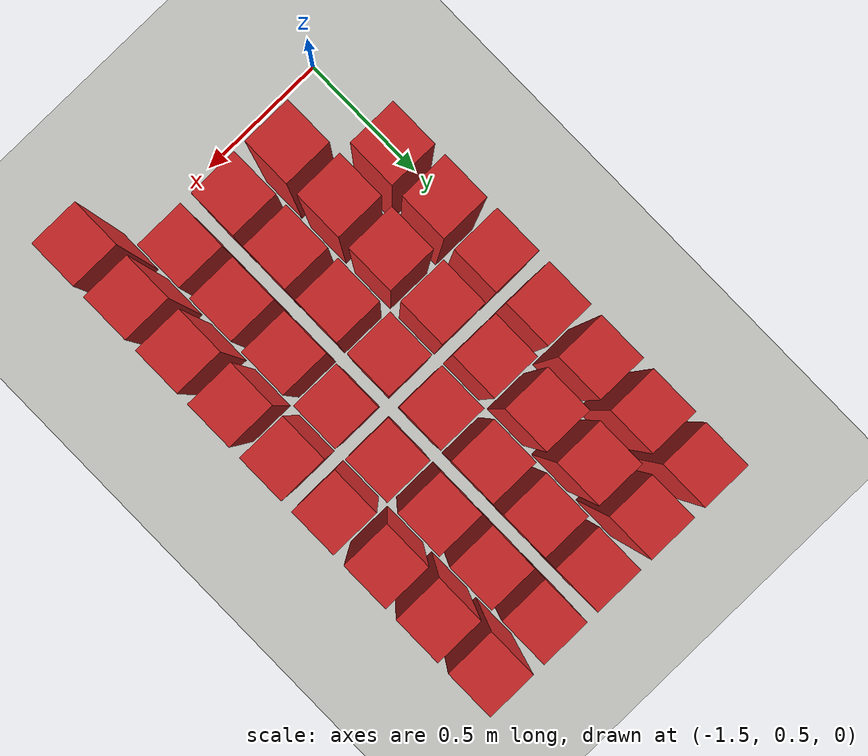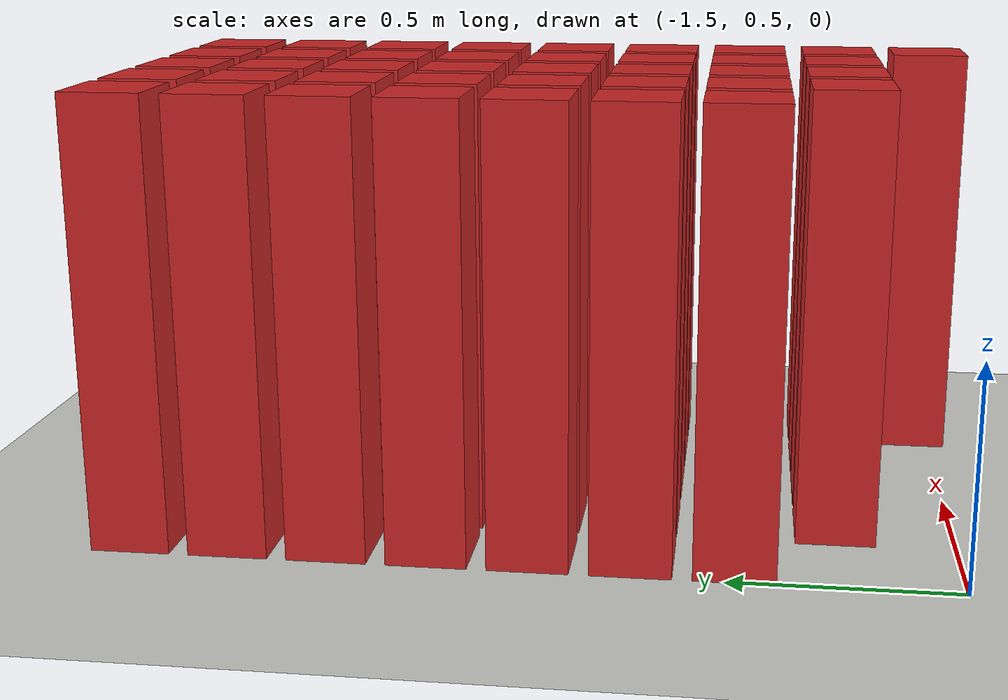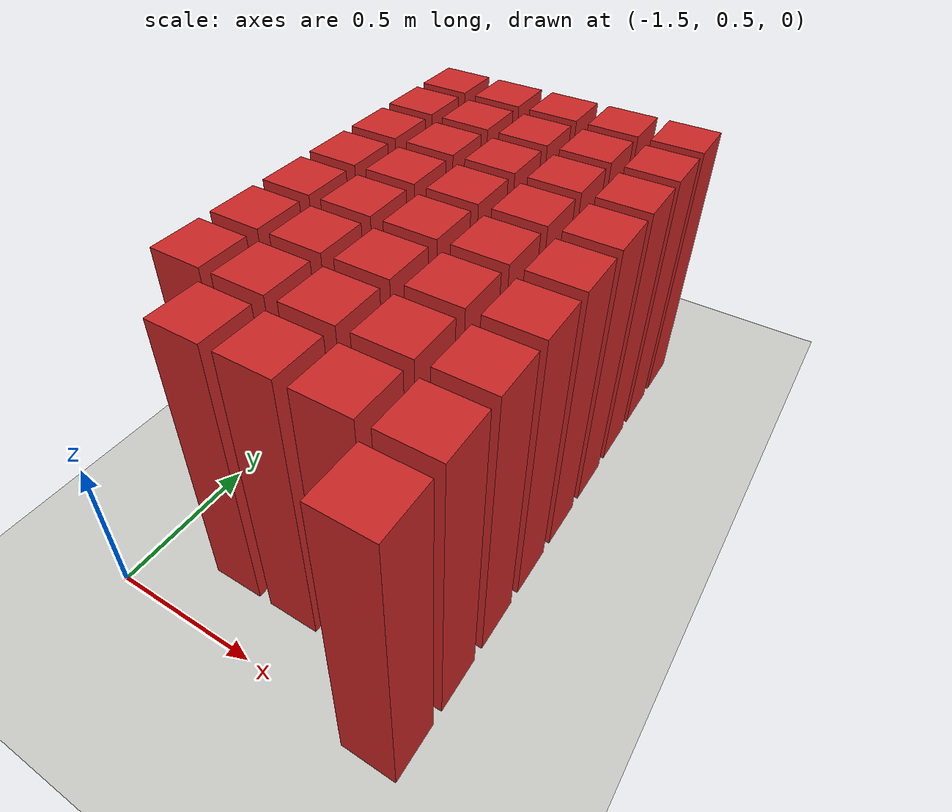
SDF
<sdf version="1.7">
 <world name="default">
  <model name="ground_plane">
   <static>1</static>
   <link name="link">
    <collision name="collision">
     <geometry><plane><normal>0 0 1</normal><size>100 100</size></plane></geometry>
     <surface>
      <contact><collide_bitmask>65535</collide_bitmask></contact>
      <friction><ode><mu>100</mu><mu2>50</mu2></ode></friction>
     </surface>
    </collision>
    <visual name="visual">
     <cast_shadows>0</cast_shadows>
     <geometry><plane><normal>0 0 1</normal><size>100 100</size></plane></geometry>
     <material>
      <script><uri>file://media/materials/scripts/gazebo.material</uri><name>Gazebo/CeilingTiled</name></script>
     </material>
    </visual>
   </link>
  </model>
  <model name="wall331">
   <link name="link">
    <pose>0 0 0.5 0 -0 0</pose>
    <inertial>
     <mass>0.5167</mass>
     <inertia>
      <ixx>0.000861167</ixx>
      <ixy>0</ixy>
      <ixz>0</ixz>
      <iyy>0.000861167</iyy>
      <iyz>0</iyz>
      <izz>0.000861167</izz>
     </inertia>
    </inertial>
    <collision name="collision">
     <geometry><box><size>0.21 0.21 1</size></box></geometry>
     <surface>
      <contact>
       <poissons_ratio>0.347</poissons_ratio>
       <elastic_modulus>8.8e+09</elastic_modulus>
       <ode><kp>100000</kp><kd>100</kd><max_vel>100</max_vel><min_depth>0.001</min_depth></ode>
      </contact>
      <friction>
       <torsional>
        <coefficient>1</coefficient>
        <use_patch_radius>0</use_patch_radius>
        <surface_radius>0.01</surface_radius>
       </torsional>
      </friction>
     </surface>
    </collision>
    <visual name="visual">
     <geometry><box><size>0.175 0.175 1</size></box></geometry>
     <material>
      <script><uri>file://media/materials/scripts/gazebo.material</uri><name>Gazebo/Red</name></script>
     </material>
    </visual>
   </link>
   <pose>-0.543478 0.543478 0 0 -0 0</pose>
  </model>
  <model name="wall351">
   <link name="link">
    <pose>0 0 0.5 0 -0 0</pose>
    <inertial>
     <mass>0.5167</mass>
     <inertia>
      <ixx>0.000861167</ixx>
      <ixy>0</ixy>
      <ixz>0</ixz>
      <iyy>0.000861167</iyy>
      <iyz>0</iyz>
      <izz>0.000861167</izz>
     </inertia>
    </inertial>
    <collision name="collision">
     <geometry><box><size>0.21 0.21 1</size></box></geometry>
     <surface>
      <contact>
       <poissons_ratio>0.347</poissons_ratio>
       <elastic_modulus>8.8e+09</elastic_modulus>
       <ode><kp>100000</kp><kd>100</kd><max_vel>100</max_vel><min_depth>0.001</min_depth></ode>
      </contact>
      <friction>
       <torsional>
        <coefficient>1</coefficient>
        <use_patch_radius>0</use_patch_radius>
        <surface_radius>0.01</surface_radius>
       </torsional>
      </friction>
     </surface>
    </collision>
    <visual name="visual">
     <geometry><box><size>0.175 0.175 1</size></box></geometry>
     <material>
      <script><uri>file://media/materials/scripts/gazebo.material</uri><name>Gazebo/Red</name></script>
     </material>
    </visual>
   </link>
   <pose>-1.19565 0.76087 0 0 -0 0</pose>
  </model>
  <model name="wall352">
   <link name="link">
    <pose>0 0 0.5 0 -0 0</pose>
    <inertial>
     <mass>0.5167</mass>
     <inertia>
      <ixx>0.000861167</ixx>
      <ixy>0</ixy>
      <ixz>0</ixz>
      <iyy>0.000861167</iyy>
      <iyz>0</iyz>
      <izz>0.000861167</izz>
     </inertia>
    </inertial>
    <collision name="collision">
     <geometry><box><size>0.21 0.21 1</size></box></geometry>
     <surface>
      <contact>
       <poissons_ratio>0.347</poissons_ratio>
       <elastic_modulus>8.8e+09</elastic_modulus>
       <ode><kp>100000</kp><kd>100</kd><max_vel>100</max_vel><min_depth>0.001</min_depth></ode>
      </contact>
      <friction>
       <torsional>
        <coefficient>1</coefficient>
        <use_patch_radius>0</use_patch_radius>
        <surface_radius>0.01</surface_radius>
       </torsional>
      </friction>
     </surface>
    </collision>
    <visual name="visual">
     <geometry><box><size>0.175 0.175 1</size></box></geometry>
     <material>
      <script><uri>file://media/materials/scripts/gazebo.material</uri><name>Gazebo/Red</name></script>
     </material>
    </visual>
   </link>
   <pose>-0.978261 0.76087 0 0 -0 0</pose>
  </model>
  <model name="wall353">
   <link name="link">
    <pose>0 0 0.5 0 -0 0</pose>
    <inertial>
     <mass>0.5167</mass>
     <inertia>
      <ixx>0.000861167</ixx>
      <ixy>0</ixy>
      <ixz>0</ixz>
      <iyy>0.000861167</iyy>
      <iyz>0</iyz>
      <izz>0.000861167</izz>
     </inertia>
    </inertial>
    <collision name="collision">
     <geometry><box><size>0.21 0.21 1</size></box></geometry>
     <surface>
      <contact>
       <poissons_ratio>0.347</poissons_ratio>
       <elastic_modulus>8.8e+09</elastic_modulus>
       <ode><kp>100000</kp><kd>100</kd><max_vel>100</max_vel><min_depth>0.001</min_depth></ode>
      </contact>
      <friction>
       <torsional>
        <coefficient>1</coefficient>
        <use_patch_radius>0</use_patch_radius>
        <surface_radius>0.01</surface_radius>
       </torsional>
      </friction>
     </surface>
    </collision>
    <visual name="visual">
     <geometry><box><size>0.175 0.175 1</size></box></geometry>
     <material>
      <script><uri>file://media/materials/scripts/gazebo.material</uri><name>Gazebo/Red</name></script>
     </material>
    </visual>
   </link>
   <pose>-0.76087 0.76087 0 0 -0 0</pose>
  </model>
  <model name="wall354">
   <link name="link">
    <pose>0 0 0.5 0 -0 0</pose>
    <inertial>
     <mass>0.5167</mass>
     <inertia>
      <ixx>0.000861167</ixx>
      <ixy>0</ixy>
      <ixz>0</ixz>
      <iyy>0.000861167</iyy>
      <iyz>0</iyz>
      <izz>0.000861167</izz>
     </inertia>
    </inertial>
    <collision name="collision">
     <geometry><box><size>0.21 0.21 1</size></box></geometry>
     <surface>
      <contact>
       <poissons_ratio>0.347</poissons_ratio>
       <elastic_modulus>8.8e+09</elastic_modulus>
       <ode><kp>100000</kp><kd>100</kd><max_vel>100</max_vel><min_depth>0.001</min_depth></ode>
      </contact>
      <friction>
       <torsional>
        <coefficient>1</coefficient>
        <use_patch_radius>0</use_patch_radius>
        <surface_radius>0.01</surface_radius>
       </torsional>
      </friction>
     </surface>
    </collision>
    <visual name="visual">
     <geometry><box><size>0.175 0.175 1</size></box></geometry>
     <material>
      <script><uri>file://media/materials/scripts/gazebo.material</uri><name>Gazebo/Red</name></script>
     </material>
    </visual>
   </link>
   <pose>-0.543478 0.76087 0 0 -0 0</pose>
  </model>
  <model name="wall373">
   <link name="link">
    <pose>0 0 0.5 0 -0 0</pose>
    <inertial>
     <mass>0.5167</mass>
     <inertia>
      <ixx>0.000861167</ixx>
      <ixy>0</ixy>
      <ixz>0</ixz>
      <iyy>0.000861167</iyy>
      <iyz>0</iyz>
      <izz>0.000861167</izz>
     </inertia>
    </inertial>
    <collision name="collision">
     <geometry><box><size>0.21 0.21 1</size></box></geometry>
     <surface>
      <contact>
       <poissons_ratio>0.347</poissons_ratio>
       <elastic_modulus>8.8e+09</elastic_modulus>
       <ode><kp>100000</kp><kd>100</kd><max_vel>100</max_vel><min_depth>0.001</min_depth></ode>
      </contact>
      <friction>
       <torsional>
        <coefficient>1</coefficient>
        <use_patch_radius>0</use_patch_radius>
        <surface_radius>0.01</surface_radius>
       </torsional>
      </friction>
     </surface>
    </collision>
    <visual name="visual">
     <geometry><box><size>0.175 0.175 1</size></box></geometry>
     <material>
      <script><uri>file://media/materials/scripts/gazebo.material</uri><name>Gazebo/Red</name></script>
     </material>
    </visual>
   </link>
   <pose>-1.41304 0.978261 0 0 -0 0</pose>
  </model>
  <model name="wall374">
   <link name="link">
    <pose>0 0 0.5 0 -0 0</pose>
    <inertial>
     <mass>0.5167</mass>
     <inertia>
      <ixx>0.000861167</ixx>
      <ixy>0</ixy>
      <ixz>0</ixz>
      <iyy>0.000861167</iyy>
      <iyz>0</iyz>
      <izz>0.000861167</izz>
     </inertia>
    </inertial>
    <collision name="collision">
     <geometry><box><size>0.21 0.21 1</size></box></geometry>
     <surface>
      <contact>
       <poissons_ratio>0.347</poissons_ratio>
       <elastic_modulus>8.8e+09</elastic_modulus>
       <ode><kp>100000</kp><kd>100</kd><max_vel>100</max_vel><min_depth>0.001</min_depth></ode>
      </contact>
      <friction>
       <torsional>
        <coefficient>1</coefficient>
        <use_patch_radius>0</use_patch_radius>
        <surface_radius>0.01</surface_radius>
       </torsional>
      </friction>
     </surface>
    </collision>
    <visual name="visual">
     <geometry><box><size>0.175 0.175 1</size></box></geometry>
     <material>
      <script><uri>file://media/materials/scripts/gazebo.material</uri><name>Gazebo/Red</name></script>
     </material>
    </visual>
   </link>
   <pose>-1.19565 0.978261 0 0 -0 0</pose>
  </model>
  <model name="wall375">
   <link name="link">
    <pose>0 0 0.5 0 -0 0</pose>
    <inertial>
     <mass>0.5167</mass>
     <inertia>
      <ixx>0.000861167</ixx>
      <ixy>0</ixy>
      <ixz>0</ixz>
      <iyy>0.000861167</iyy>
      <iyz>0</iyz>
      <izz>0.000861167</izz>
     </inertia>
    </inertial>
    <collision name="collision">
     <geometry><box><size>0.21 0.21 1</size></box></geometry>
     <surface>
      <contact>
       <poissons_ratio>0.347</poissons_ratio>
       <elastic_modulus>8.8e+09</elastic_modulus>
       <ode><kp>100000</kp><kd>100</kd><max_vel>100</max_vel><min_depth>0.001</min_depth></ode>
      </contact>
      <friction>
       <torsional>
        <coefficient>1</coefficient>
        <use_patch_radius>0</use_patch_radius>
        <surface_radius>0.01</surface_radius>
       </torsional>
      </friction>
     </surface>
    </collision>
    <visual name="visual">
     <geometry><box><size>0.175 0.175 1</size></box></geometry>
     <material>
      <script><uri>file://media/materials/scripts/gazebo.material</uri><name>Gazebo/Red</name></script>
     </material>
    </visual>
   </link>
   <pose>-0.978261 0.978261 0 0 -0 0</pose>
  </model>
  <model name="wall376">
   <link name="link">
    <pose>0 0 0.5 0 -0 0</pose>
    <inertial>
     <mass>0.5167</mass>
     <inertia>
      <ixx>0.000861167</ixx>
      <ixy>0</ixy>
      <ixz>0</ixz>
      <iyy>0.000861167</iyy>
      <iyz>0</iyz>
      <izz>0.000861167</izz>
     </inertia>
    </inertial>
    <collision name="collision">
     <geometry><box><size>0.21 0.21 1</size></box></geometry>
     <surface>
      <contact>
       <poissons_ratio>0.347</poissons_ratio>
       <elastic_modulus>8.8e+09</elastic_modulus>
       <ode><kp>100000</kp><kd>100</kd><max_vel>100</max_vel><min_depth>0.001</min_depth></ode>
      </contact>
      <friction>
       <torsional>
        <coefficient>1</coefficient>
        <use_patch_radius>0</use_patch_radius>
        <surface_radius>0.01</surface_radius>
       </torsional>
      </friction>
     </surface>
    </collision>
    <visual name="visual">
     <geometry><box><size>0.175 0.175 1</size></box></geometry>
     <material>
      <script><uri>file://media/materials/scripts/gazebo.material</uri><name>Gazebo/Red</name></script>
     </material>
    </visual>
   </link>
   <pose>-0.76087 0.978261 0 0 -0 0</pose>
  </model>
  <model name="wall377">
   <link name="link">
    <pose>0 0 0.5 0 -0 0</pose>
    <inertial>
     <mass>0.5167</mass>
     <inertia>
      <ixx>0.000861167</ixx>
      <ixy>0</ixy>
      <ixz>0</ixz>
      <iyy>0.000861167</iyy>
      <iyz>0</iyz>
      <izz>0.000861167</izz>
     </inertia>
    </inertial>
    <collision name="collision">
     <geometry><box><size>0.21 0.21 1</size></box></geometry>
     <surface>
      <contact>
       <poissons_ratio>0.347</poissons_ratio>
       <elastic_modulus>8.8e+09</elastic_modulus>
       <ode><kp>100000</kp><kd>100</kd><max_vel>100</max_vel><min_depth>0.001</min_depth></ode>
      </contact>
      <friction>
       <torsional>
        <coefficient>1</coefficient>
        <use_patch_radius>0</use_patch_radius>
        <surface_radius>0.01</surface_radius>
       </torsional>
      </friction>
     </surface>
    </collision>
    <visual name="visual">
     <geometry><box><size>0.175 0.175 1</size></box></geometry>
     <material>
      <script><uri>file://media/materials/scripts/gazebo.material</uri><name>Gazebo/Red</name></script>
     </material>
    </visual>
   </link>
   <pose>-0.543478 0.978261 0 0 -0 0</pose>
  </model>
  <model name="wall396">
   <link name="link">
    <pose>0 0 0.5 0 -0 0</pose>
    <inertial>
     <mass>0.5167</mass>
     <inertia>
      <ixx>0.000861167</ixx>
      <ixy>0</ixy>
      <ixz>0</ixz>
      <iyy>0.000861167</iyy>
      <iyz>0</iyz>
      <izz>0.000861167</izz>
     </inertia>
    </inertial>
    <collision name="collision">
     <geometry><box><size>0.21 0.21 1</size></box></geometry>
     <surface>
      <contact>
       <poissons_ratio>0.347</poissons_ratio>
       <elastic_modulus>8.8e+09</elastic_modulus>
       <ode><kp>100000</kp><kd>100</kd><max_vel>100</max_vel><min_depth>0.001</min_depth></ode>
      </contact>
      <friction>
       <torsional>
        <coefficient>1</coefficient>
        <use_patch_radius>0</use_patch_radius>
        <surface_radius>0.01</surface_radius>
       </torsional>
      </friction>
     </surface>
    </collision>
    <visual name="visual">
     <geometry><box><size>0.175 0.175 1</size></box></geometry>
     <material>
      <script><uri>file://media/materials/scripts/gazebo.material</uri><name>Gazebo/Red</name></script>
     </material>
    </visual>
   </link>
   <pose>-1.41304 1.19565 0 0 -0 0</pose>
  </model>
  <model name="wall397">
   <link name="link">
    <pose>0 0 0.5 0 -0 0</pose>
    <inertial>
     <mass>0.5167</mass>
     <inertia>
      <ixx>0.000861167</ixx>
      <ixy>0</ixy>
      <ixz>0</ixz>
      <iyy>0.000861167</iyy>
      <iyz>0</iyz>
      <izz>0.000861167</izz>
     </inertia>
    </inertial>
    <collision name="collision">
     <geometry><box><size>0.21 0.21 1</size></box></geometry>
     <surface>
      <contact>
       <poissons_ratio>0.347</poissons_ratio>
       <elastic_modulus>8.8e+09</elastic_modulus>
       <ode><kp>100000</kp><kd>100</kd><max_vel>100</max_vel><min_depth>0.001</min_depth></ode>
      </contact>
      <friction>
       <torsional>
        <coefficient>1</coefficient>
        <use_patch_radius>0</use_patch_radius>
        <surface_radius>0.01</surface_radius>
       </torsional>
      </friction>
     </surface>
    </collision>
    <visual name="visual">
     <geometry><box><size>0.175 0.175 1</size></box></geometry>
     <material>
      <script><uri>file://media/materials/scripts/gazebo.material</uri><name>Gazebo/Red</name></script>
     </material>
    </visual>
   </link>
   <pose>-1.19565 1.19565 0 0 -0 0</pose>
  </model>
  <model name="wall398">
   <link name="link">
    <pose>0 0 0.5 0 -0 0</pose>
    <inertial>
     <mass>0.5167</mass>
     <inertia>
      <ixx>0.000861167</ixx>
      <ixy>0</ixy>
      <ixz>0</ixz>
      <iyy>0.000861167</iyy>
      <iyz>0</iyz>
      <izz>0.000861167</izz>
     </inertia>
    </inertial>
    <collision name="collision">
     <geometry><box><size>0.21 0.21 1</size></box></geometry>
     <surface>
      <contact>
       <poissons_ratio>0.347</poissons_ratio>
       <elastic_modulus>8.8e+09</elastic_modulus>
       <ode><kp>100000</kp><kd>100</kd><max_vel>100</max_vel><min_depth>0.001</min_depth></ode>
      </contact>
      <friction>
       <torsional>
        <coefficient>1</coefficient>
        <use_patch_radius>0</use_patch_radius>
        <surface_radius>0.01</surface_radius>
       </torsional>
      </friction>
     </surface>
    </collision>
    <visual name="visual">
     <geometry><box><size>0.175 0.175 1</size></box></geometry>
     <material>
      <script><uri>file://media/materials/scripts/gazebo.material</uri><name>Gazebo/Red</name></script>
     </material>
    </visual>
   </link>
   <pose>-0.978261 1.19565 0 0 -0 0</pose>
  </model>
  <model name="wall399">
   <link name="link">
    <pose>0 0 0.5 0 -0 0</pose>
    <inertial>
     <mass>0.5167</mass>
     <inertia>
      <ixx>0.000861167</ixx>
      <ixy>0</ixy>
      <ixz>0</ixz>
      <iyy>0.000861167</iyy>
      <iyz>0</iyz>
      <izz>0.000861167</izz>
     </inertia>
    </inertial>
    <collision name="collision">
     <geometry><box><size>0.21 0.21 1</size></box></geometry>
     <surface>
      <contact>
       <poissons_ratio>0.347</poissons_ratio>
       <elastic_modulus>8.8e+09</elastic_modulus>
       <ode><kp>100000</kp><kd>100</kd><max_vel>100</max_vel><min_depth>0.001</min_depth></ode>
      </contact>
      <friction>
       <torsional>
        <coefficient>1</coefficient>
        <use_patch_radius>0</use_patch_radius>
        <surface_radius>0.01</surface_radius>
       </torsional>
      </friction>
     </surface>
    </collision>
    <visual name="visual">
     <geometry><box><size>0.175 0.175 1</size></box></geometry>
     <material>
      <script><uri>file://media/materials/scripts/gazebo.material</uri><name>Gazebo/Red</name></script>
     </material>
    </visual>
   </link>
   <pose>-0.76087 1.19565 0 0 -0 0</pose>
  </model>
  <model name="wall400">
   <link name="link">
    <pose>0 0 0.5 0 -0 0</pose>
    <inertial>
     <mass>0.5167</mass>
     <inertia>
      <ixx>0.000861167</ixx>
      <ixy>0</ixy>
      <ixz>0</ixz>
      <iyy>0.000861167</iyy>
      <iyz>0</iyz>
      <izz>0.000861167</izz>
     </inertia>
    </inertial>
    <collision name="collision">
     <geometry><box><size>0.21 0.21 1</size></box></geometry>
     <surface>
      <contact>
       <poissons_ratio>0.347</poissons_ratio>
       <elastic_modulus>8.8e+09</elastic_modulus>
       <ode><kp>100000</kp><kd>100</kd><max_vel>100</max_vel><min_depth>0.001</min_depth></ode>
      </contact>
      <friction>
       <torsional>
        <coefficient>1</coefficient>
        <use_patch_radius>0</use_patch_radius>
        <surface_radius>0.01</surface_radius>
       </torsional>
      </friction>
     </surface>
    </collision>
    <visual name="visual">
     <geometry><box><size>0.175 0.175 1</size></box></geometry>
     <material>
      <script><uri>file://media/materials/scripts/gazebo.material</uri><name>Gazebo/Red</name></script>
     </material>
    </visual>
   </link>
   <pose>-0.543478 1.19565 0 0 -0 0</pose>
  </model>
  <model name="wall419">
   <link name="link">
    <pose>0 0 0.5 0 -0 0</pose>
    <inertial>
     <mass>0.5167</mass>
     <inertia>
      <ixx>0.000861167</ixx>
      <ixy>0</ixy>
      <ixz>0</ixz>
      <iyy>0.000861167</iyy>
      <iyz>0</iyz>
      <izz>0.000861167</izz>
     </inertia>
    </inertial>
    <collision name="collision">
     <geometry><box><size>0.21 0.21 1</size></box></geometry>
     <surface>
      <contact>
       <poissons_ratio>0.347</poissons_ratio>
       <elastic_modulus>8.8e+09</elastic_modulus>
       <ode><kp>100000</kp><kd>100</kd><max_vel>100</max_vel><min_depth>0.001</min_depth></ode>
      </contact>
      <friction>
       <torsional>
        <coefficient>1</coefficient>
        <use_patch_radius>0</use_patch_radius>
        <surface_radius>0.01</surface_radius>
       </torsional>
      </friction>
     </surface>
    </collision>
    <visual name="visual">
     <geometry><box><size>0.175 0.175 1</size></box></geometry>
     <material>
      <script><uri>file://media/materials/scripts/gazebo.material</uri><name>Gazebo/Red</name></script>
     </material>
    </visual>
   </link>
   <pose>-1.41304 1.41304 0 0 -0 0</pose>
  </model>
  <model name="wall420">
   <link name="link">
    <pose>0 0 0.5 0 -0 0</pose>
    <inertial>
     <mass>0.5167</mass>
     <inertia>
      <ixx>0.000861167</ixx>
      <ixy>0</ixy>
      <ixz>0</ixz>
      <iyy>0.000861167</iyy>
      <iyz>0</iyz>
      <izz>0.000861167</izz>
     </inertia>
    </inertial>
    <collision name="collision">
     <geometry><box><size>0.21 0.21 1</size></box></geometry>
     <surface>
      <contact>
       <poissons_ratio>0.347</poissons_ratio>
       <elastic_modulus>8.8e+09</elastic_modulus>
       <ode><kp>100000</kp><kd>100</kd><max_vel>100</max_vel><min_depth>0.001</min_depth></ode>
      </contact>
      <friction>
       <torsional>
        <coefficient>1</coefficient>
        <use_patch_radius>0</use_patch_radius>
        <surface_radius>0.01</surface_radius>
       </torsional>
      </friction>
     </surface>
    </collision>
    <visual name="visual">
     <geometry><box><size>0.175 0.175 1</size></box></geometry>
     <material>
      <script><uri>file://media/materials/scripts/gazebo.material</uri><name>Gazebo/Red</name></script>
     </material>
    </visual>
   </link>
   <pose>-1.19565 1.41304 0 0 -0 0</pose>
  </model>
  <model name="wall421">
   <link name="link">
    <pose>0 0 0.5 0 -0 0</pose>
    <inertial>
     <mass>0.5167</mass>
     <inertia>
      <ixx>0.000861167</ixx>
      <ixy>0</ixy>
      <ixz>0</ixz>
      <iyy>0.000861167</iyy>
      <iyz>0</iyz>
      <izz>0.000861167</izz>
     </inertia>
    </inertial>
    <collision name="collision">
     <geometry><box><size>0.21 0.21 1</size></box></geometry>
     <surface>
      <contact>
       <poissons_ratio>0.347</poissons_ratio>
       <elastic_modulus>8.8e+09</elastic_modulus>
       <ode><kp>100000</kp><kd>100</kd><max_vel>100</max_vel><min_depth>0.001</min_depth></ode>
      </contact>
      <friction>
       <torsional>
        <coefficient>1</coefficient>
        <use_patch_radius>0</use_patch_radius>
        <surface_radius>0.01</surface_radius>
       </torsional>
      </friction>
     </surface>
    </collision>
    <visual name="visual">
     <geometry><box><size>0.175 0.175 1</size></box></geometry>
     <material>
      <script><uri>file://media/materials/scripts/gazebo.material</uri><name>Gazebo/Red</name></script>
     </material>
    </visual>
   </link>
   <pose>-0.978261 1.41304 0 0 -0 0</pose>
  </model>
  <model name="wall422">
   <link name="link">
    <pose>0 0 0.5 0 -0 0</pose>
    <inertial>
     <mass>0.5167</mass>
     <inertia>
      <ixx>0.000861167</ixx>
      <ixy>0</ixy>
      <ixz>0</ixz>
      <iyy>0.000861167</iyy>
      <iyz>0</iyz>
      <izz>0.000861167</izz>
     </inertia>
    </inertial>
    <collision name="collision">
     <geometry><box><size>0.21 0.21 1</size></box></geometry>
     <surface>
      <contact>
       <poissons_ratio>0.347</poissons_ratio>
       <elastic_modulus>8.8e+09</elastic_modulus>
       <ode><kp>100000</kp><kd>100</kd><max_vel>100</max_vel><min_depth>0.001</min_depth></ode>
      </contact>
      <friction>
       <torsional>
        <coefficient>1</coefficient>
        <use_patch_radius>0</use_patch_radius>
        <surface_radius>0.01</surface_radius>
       </torsional>
      </friction>
     </surface>
    </collision>
    <visual name="visual">
     <geometry><box><size>0.175 0.175 1</size></box></geometry>
     <material>
      <script><uri>file://media/materials/scripts/gazebo.material</uri><name>Gazebo/Red</name></script>
     </material>
    </visual>
   </link>
   <pose>-0.76087 1.41304 0 0 -0 0</pose>
  </model>
  <model name="wall423">
   <link name="link">
    <pose>0 0 0.5 0 -0 0</pose>
    <inertial>
     <mass>0.5167</mass>
     <inertia>
      <ixx>0.000861167</ixx>
      <ixy>0</ixy>
      <ixz>0</ixz>
      <iyy>0.000861167</iyy>
      <iyz>0</iyz>
      <izz>0.000861167</izz>
     </inertia>
    </inertial>
    <collision name="collision">
     <geometry><box><size>0.21 0.21 1</size></box></geometry>
     <surface>
      <contact>
       <poissons_ratio>0.347</poissons_ratio>
       <elastic_modulus>8.8e+09</elastic_modulus>
       <ode><kp>100000</kp><kd>100</kd><max_vel>100</max_vel><min_depth>0.001</min_depth></ode>
      </contact>
      <friction>
       <torsional>
        <coefficient>1</coefficient>
        <use_patch_radius>0</use_patch_radius>
        <surface_radius>0.01</surface_radius>
       </torsional>
      </friction>
     </surface>
    </collision>
    <visual name="visual">
     <geometry><box><size>0.175 0.175 1</size></box></geometry>
     <material>
      <script><uri>file://media/materials/scripts/gazebo.material</uri><name>Gazebo/Red</name></script>
     </material>
    </visual>
   </link>
   <pose>-0.543478 1.41304 0 0 -0 0</pose>
  </model>
  <model name="wall442">
   <link name="link">
    <pose>0 0 0.5 0 -0 0</pose>
    <inertial>
     <mass>0.5167</mass>
     <inertia>
      <ixx>0.000861167</ixx>
      <ixy>0</ixy>
      <ixz>0</ixz>
      <iyy>0.000861167</iyy>
      <iyz>0</iyz>
      <izz>0.000861167</izz>
     </inertia>
    </inertial>
    <collision name="collision">
     <geometry><box><size>0.21 0.21 1</size></box></geometry>
     <surface>
      <contact>
       <poissons_ratio>0.347</poissons_ratio>
       <elastic_modulus>8.8e+09</elastic_modulus>
       <ode><kp>100000</kp><kd>100</kd><max_vel>100</max_vel><min_depth>0.001</min_depth></ode>
      </contact>
      <friction>
       <torsional>
        <coefficient>1</coefficient>
        <use_patch_radius>0</use_patch_radius>
        <surface_radius>0.01</surface_radius>
       </torsional>
      </friction>
     </surface>
    </collision>
    <visual name="visual">
     <geometry><box><size>0.175 0.175 1</size></box></geometry>
     <material>
      <script><uri>file://media/materials/scripts/gazebo.material</uri><name>Gazebo/Red</name></script>
     </material>
    </visual>
   </link>
   <pose>-1.41304 1.63043 0 0 -0 0</pose>
  </model>
  <model name="wall443">
   <link name="link">
    <pose>0 0 0.5 0 -0 0</pose>
    <inertial>
     <mass>0.5167</mass>
     <inertia>
      <ixx>0.000861167</ixx>
      <ixy>0</ixy>
      <ixz>0</ixz>
      <iyy>0.000861167</iyy>
      <iyz>0</iyz>
      <izz>0.000861167</izz>
     </inertia>
    </inertial>
    <collision name="collision">
     <geometry><box><size>0.21 0.21 1</size></box></geometry>
     <surface>
      <contact>
       <poissons_ratio>0.347</poissons_ratio>
       <elastic_modulus>8.8e+09</elastic_modulus>
       <ode><kp>100000</kp><kd>100</kd><max_vel>100</max_vel><min_depth>0.001</min_depth></ode>
      </contact>
      <friction>
       <torsional>
        <coefficient>1</coefficient>
        <use_patch_radius>0</use_patch_radius>
        <surface_radius>0.01</surface_radius>
       </torsional>
      </friction>
     </surface>
    </collision>
    <visual name="visual">
     <geometry><box><size>0.175 0.175 1</size></box></geometry>
     <material>
      <script><uri>file://media/materials/scripts/gazebo.material</uri><name>Gazebo/Red</name></script>
     </material>
    </visual>
   </link>
   <pose>-1.19565 1.63043 0 0 -0 0</pose>
  </model>
  <model name="wall444">
   <link name="link">
    <pose>0 0 0.5 0 -0 0</pose>
    <inertial>
     <mass>0.5167</mass>
     <inertia>
      <ixx>0.000861167</ixx>
      <ixy>0</ixy>
      <ixz>0</ixz>
      <iyy>0.000861167</iyy>
      <iyz>0</iyz>
      <izz>0.000861167</izz>
     </inertia>
    </inertial>
    <collision name="collision">
     <geometry><box><size>0.21 0.21 1</size></box></geometry>
     <surface>
      <contact>
       <poissons_ratio>0.347</poissons_ratio>
       <elastic_modulus>8.8e+09</elastic_modulus>
       <ode><kp>100000</kp><kd>100</kd><max_vel>100</max_vel><min_depth>0.001</min_depth></ode>
      </contact>
      <friction>
       <torsional>
        <coefficient>1</coefficient>
        <use_patch_radius>0</use_patch_radius>
        <surface_radius>0.01</surface_radius>
       </torsional>
      </friction>
     </surface>
    </collision>
    <visual name="visual">
     <geometry><box><size>0.175 0.175 1</size></box></geometry>
     <material>
      <script><uri>file://media/materials/scripts/gazebo.material</uri><name>Gazebo/Red</name></script>
     </material>
    </visual>
   </link>
   <pose>-0.978261 1.63043 0 0 -0 0</pose>
  </model>
  <model name="wall445">
   <link name="link">
    <pose>0 0 0.5 0 -0 0</pose>
    <inertial>
     <mass>0.5167</mass>
     <inertia>
      <ixx>0.000861167</ixx>
      <ixy>0</ixy>
      <ixz>0</ixz>
      <iyy>0.000861167</iyy>
      <iyz>0</iyz>
      <izz>0.000861167</izz>
     </inertia>
    </inertial>
    <collision name="collision">
     <geometry><box><size>0.21 0.21 1</size></box></geometry>
     <surface>
      <contact>
       <poissons_ratio>0.347</poissons_ratio>
       <elastic_modulus>8.8e+09</elastic_modulus>
       <ode><kp>100000</kp><kd>100</kd><max_vel>100</max_vel><min_depth>0.001</min_depth></ode>
      </contact>
      <friction>
       <torsional>
        <coefficient>1</coefficient>
        <use_patch_radius>0</use_patch_radius>
        <surface_radius>0.01</surface_radius>
       </torsional>
      </friction>
     </surface>
    </collision>
    <visual name="visual">
     <geometry><box><size>0.175 0.175 1</size></box></geometry>
     <material>
      <script><uri>file://media/materials/scripts/gazebo.material</uri><name>Gazebo/Red</name></script>
     </material>
    </visual>
   </link>
   <pose>-0.76087 1.63043 0 0 -0 0</pose>
  </model>
  <model name="wall446">
   <link name="link">
    <pose>0 0 0.5 0 -0 0</pose>
    <inertial>
     <mass>0.5167</mass>
     <inertia>
      <ixx>0.000861167</ixx>
      <ixy>0</ixy>
      <ixz>0</ixz>
      <iyy>0.000861167</iyy>
      <iyz>0</iyz>
      <izz>0.000861167</izz>
     </inertia>
    </inertial>
    <collision name="collision">
     <geometry><box><size>0.21 0.21 1</size></box></geometry>
     <surface>
      <contact>
       <poissons_ratio>0.347</poissons_ratio>
       <elastic_modulus>8.8e+09</elastic_modulus>
       <ode><kp>100000</kp><kd>100</kd><max_vel>100</max_vel><min_depth>0.001</min_depth></ode>
      </contact>
      <friction>
       <torsional>
        <coefficient>1</coefficient>
        <use_patch_radius>0</use_patch_radius>
        <surface_radius>0.01</surface_radius>
       </torsional>
      </friction>
     </surface>
    </collision>
    <visual name="visual">
     <geometry><box><size>0.175 0.175 1</size></box></geometry>
     <material>
      <script><uri>file://media/materials/scripts/gazebo.material</uri><name>Gazebo/Red</name></script>
     </material>
    </visual>
   </link>
   <pose>-0.543478 1.63043 0 0 -0 0</pose>
  </model>
  <model name="wall465">
   <link name="link">
    <pose>0 0 0.5 0 -0 0</pose>
    <inertial>
     <mass>0.5167</mass>
     <inertia>
      <ixx>0.000861167</ixx>
      <ixy>0</ixy>
      <ixz>0</ixz>
      <iyy>0.000861167</iyy>
      <iyz>0</iyz>
      <izz>0.000861167</izz>
     </inertia>
    </inertial>
    <collision name="collision">
     <geometry><box><size>0.21 0.21 1</size></box></geometry>
     <surface>
      <contact>
       <poissons_ratio>0.347</poissons_ratio>
       <elastic_modulus>8.8e+09</elastic_modulus>
       <ode><kp>100000</kp><kd>100</kd><max_vel>100</max_vel><min_depth>0.001</min_depth></ode>
      </contact>
      <friction>
       <torsional>
        <coefficient>1</coefficient>
        <use_patch_radius>0</use_patch_radius>
        <surface_radius>0.01</surface_radius>
       </torsional>
      </friction>
     </surface>
    </collision>
    <visual name="visual">
     <geometry><box><size>0.175 0.175 1</size></box></geometry>
     <material>
      <script><uri>file://media/materials/scripts/gazebo.material</uri><name>Gazebo/Red</name></script>
     </material>
    </visual>
   </link>
   <pose>-1.41304 1.84783 0 0 -0 0</pose>
  </model>
  <model name="wall466">
   <link name="link">
    <pose>0 0 0.5 0 -0 0</pose>
    <inertial>
     <mass>0.5167</mass>
     <inertia>
      <ixx>0.000861167</ixx>
      <ixy>0</ixy>
      <ixz>0</ixz>
      <iyy>0.000861167</iyy>
      <iyz>0</iyz>
      <izz>0.000861167</izz>
     </inertia>
    </inertial>
    <collision name="collision">
     <geometry><box><size>0.21 0.21 1</size></box></geometry>
     <surface>
      <contact>
       <poissons_ratio>0.347</poissons_ratio>
       <elastic_modulus>8.8e+09</elastic_modulus>
       <ode><kp>100000</kp><kd>100</kd><max_vel>100</max_vel><min_depth>0.001</min_depth></ode>
      </contact>
      <friction>
       <torsional>
        <coefficient>1</coefficient>
        <use_patch_radius>0</use_patch_radius>
        <surface_radius>0.01</surface_radius>
       </torsional>
      </friction>
     </surface>
    </collision>
    <visual name="visual">
     <geometry><box><size>0.175 0.175 1</size></box></geometry>
     <material>
      <script><uri>file://media/materials/scripts/gazebo.material</uri><name>Gazebo/Red</name></script>
     </material>
    </visual>
   </link>
   <pose>-1.19565 1.84783 0 0 -0 0</pose>
  </model>
  <model name="wall467">
   <link name="link">
    <pose>0 0 0.5 0 -0 0</pose>
    <inertial>
     <mass>0.5167</mass>
     <inertia>
      <ixx>0.000861167</ixx>
      <ixy>0</ixy>
      <ixz>0</ixz>
      <iyy>0.000861167</iyy>
      <iyz>0</iyz>
      <izz>0.000861167</izz>
     </inertia>
    </inertial>
    <collision name="collision">
     <geometry><box><size>0.21 0.21 1</size></box></geometry>
     <surface>
      <contact>
       <poissons_ratio>0.347</poissons_ratio>
       <elastic_modulus>8.8e+09</elastic_modulus>
       <ode><kp>100000</kp><kd>100</kd><max_vel>100</max_vel><min_depth>0.001</min_depth></ode>
      </contact>
      <friction>
       <torsional>
        <coefficient>1</coefficient>
        <use_patch_radius>0</use_patch_radius>
        <surface_radius>0.01</surface_radius>
       </torsional>
      </friction>
     </surface>
    </collision>
    <visual name="visual">
     <geometry><box><size>0.175 0.175 1</size></box></geometry>
     <material>
      <script><uri>file://media/materials/scripts/gazebo.material</uri><name>Gazebo/Red</name></script>
     </material>
    </visual>
   </link>
   <pose>-0.978261 1.84783 0 0 -0 0</pose>
  </model>
  <model name="wall468">
   <link name="link">
    <pose>0 0 0.5 0 -0 0</pose>
    <inertial>
     <mass>0.5167</mass>
     <inertia>
      <ixx>0.000861167</ixx>
      <ixy>0</ixy>
      <ixz>0</ixz>
      <iyy>0.000861167</iyy>
      <iyz>0</iyz>
      <izz>0.000861167</izz>
     </inertia>
    </inertial>
    <collision name="collision">
     <geometry><box><size>0.21 0.21 1</size></box></geometry>
     <surface>
      <contact>
       <poissons_ratio>0.347</poissons_ratio>
       <elastic_modulus>8.8e+09</elastic_modulus>
       <ode><kp>100000</kp><kd>100</kd><max_vel>100</max_vel><min_depth>0.001</min_depth></ode>
      </contact>
      <friction>
       <torsional>
        <coefficient>1</coefficient>
        <use_patch_radius>0</use_patch_radius>
        <surface_radius>0.01</surface_radius>
       </torsional>
      </friction>
     </surface>
    </collision>
    <visual name="visual">
     <geometry><box><size>0.175 0.175 1</size></box></geometry>
     <material>
      <script><uri>file://media/materials/scripts/gazebo.material</uri><name>Gazebo/Red</name></script>
     </material>
    </visual>
   </link>
   <pose>-0.76087 1.84783 0 0 -0 0</pose>
  </model>
  <model name="wall469">
   <link name="link">
    <pose>0 0 0.5 0 -0 0</pose>
    <inertial>
     <mass>0.5167</mass>
     <inertia>
      <ixx>0.000861167</ixx>
      <ixy>0</ixy>
      <ixz>0</ixz>
      <iyy>0.000861167</iyy>
      <iyz>0</iyz>
      <izz>0.000861167</izz>
     </inertia>
    </inertial>
    <collision name="collision">
     <geometry><box><size>0.21 0.21 1</size></box></geometry>
     <surface>
      <contact>
       <poissons_ratio>0.347</poissons_ratio>
       <elastic_modulus>8.8e+09</elastic_modulus>
       <ode><kp>100000</kp><kd>100</kd><max_vel>100</max_vel><min_depth>0.001</min_depth></ode>
      </contact>
      <friction>
       <torsional>
        <coefficient>1</coefficient>
        <use_patch_radius>0</use_patch_radius>
        <surface_radius>0.01</surface_radius>
       </torsional>
      </friction>
     </surface>
    </collision>
    <visual name="visual">
     <geometry><box><size>0.175 0.175 1</size></box></geometry>
     <material>
      <script><uri>file://media/materials/scripts/gazebo.material</uri><name>Gazebo/Red</name></script>
     </material>
    </visual>
   </link>
   <pose>-0.543478 1.84783 0 0 -0 0</pose>
  </model>
  <model name="wall488">
   <link name="link">
    <pose>0 0 0.5 0 -0 0</pose>
    <inertial>
     <mass>0.5167</mass>
     <inertia>
      <ixx>0.000861167</ixx>
      <ixy>0</ixy>
      <ixz>0</ixz>
      <iyy>0.000861167</iyy>
      <iyz>0</iyz>
      <izz>0.000861167</izz>
     </inertia>
    </inertial>
    <collision name="collision">
     <geometry><box><size>0.21 0.21 1</size></box></geometry>
     <surface>
      <contact>
       <poissons_ratio>0.347</poissons_ratio>
       <elastic_modulus>8.8e+09</elastic_modulus>
       <ode><kp>100000</kp><kd>100</kd><max_vel>100</max_vel><min_depth>0.001</min_depth></ode>
      </contact>
      <friction>
       <torsional>
        <coefficient>1</coefficient>
        <use_patch_radius>0</use_patch_radius>
        <surface_radius>0.01</surface_radius>
       </torsional>
      </friction>
     </surface>
    </collision>
    <visual name="visual">
     <geometry><box><size>0.175 0.175 1</size></box></geometry>
     <material>
      <script><uri>file://media/materials/scripts/gazebo.material</uri><name>Gazebo/Red</name></script>
     </material>
    </visual>
   </link>
   <pose>-1.41304 2.06522 0 0 -0 0</pose>
  </model>
  <model name="wall489">
   <link name="link">
    <pose>0 0 0.5 0 -0 0</pose>
    <inertial>
     <mass>0.5167</mass>
     <inertia>
      <ixx>0.000861167</ixx>
      <ixy>0</ixy>
      <ixz>0</ixz>
      <iyy>0.000861167</iyy>
      <iyz>0</iyz>
      <izz>0.000861167</izz>
     </inertia>
    </inertial>
    <collision name="collision">
     <geometry><box><size>0.21 0.21 1</size></box></geometry>
     <surface>
      <contact>
       <poissons_ratio>0.347</poissons_ratio>
       <elastic_modulus>8.8e+09</elastic_modulus>
       <ode><kp>100000</kp><kd>100</kd><max_vel>100</max_vel><min_depth>0.001</min_depth></ode>
      </contact>
      <friction>
       <torsional>
        <coefficient>1</coefficient>
        <use_patch_radius>0</use_patch_radius>
        <surface_radius>0.01</surface_radius>
       </torsional>
      </friction>
     </surface>
    </collision>
    <visual name="visual">
     <geometry><box><size>0.175 0.175 1</size></box></geometry>
     <material>
      <script><uri>file://media/materials/scripts/gazebo.material</uri><name>Gazebo/Red</name></script>
     </material>
    </visual>
   </link>
   <pose>-1.19565 2.06522 0 0 -0 0</pose>
  </model>
  <model name="wall490">
   <link name="link">
    <pose>0 0 0.5 0 -0 0</pose>
    <inertial>
     <mass>0.5167</mass>
     <inertia>
      <ixx>0.000861167</ixx>
      <ixy>0</ixy>
      <ixz>0</ixz>
      <iyy>0.000861167</iyy>
      <iyz>0</iyz>
      <izz>0.000861167</izz>
     </inertia>
    </inertial>
    <collision name="collision">
     <geometry><box><size>0.21 0.21 1</size></box></geometry>
     <surface>
      <contact>
       <poissons_ratio>0.347</poissons_ratio>
       <elastic_modulus>8.8e+09</elastic_modulus>
       <ode><kp>100000</kp><kd>100</kd><max_vel>100</max_vel><min_depth>0.001</min_depth></ode>
      </contact>
      <friction>
       <torsional>
        <coefficient>1</coefficient>
        <use_patch_radius>0</use_patch_radius>
        <surface_radius>0.01</surface_radius>
       </torsional>
      </friction>
     </surface>
    </collision>
    <visual name="visual">
     <geometry><box><size>0.175 0.175 1</size></box></geometry>
     <material>
      <script><uri>file://media/materials/scripts/gazebo.material</uri><name>Gazebo/Red</name></script>
     </material>
    </visual>
   </link>
   <pose>-0.978261 2.06522 0 0 -0 0</pose>
  </model>
  <model name="wall491">
   <link name="link">
    <pose>0 0 0.5 0 -0 0</pose>
    <inertial>
     <mass>0.5167</mass>
     <inertia>
      <ixx>0.000861167</ixx>
      <ixy>0</ixy>
      <ixz>0</ixz>
      <iyy>0.000861167</iyy>
      <iyz>0</iyz>
      <izz>0.000861167</izz>
     </inertia>
    </inertial>
    <collision name="collision">
     <geometry><box><size>0.21 0.21 1</size></box></geometry>
     <surface>
      <contact>
       <poissons_ratio>0.347</poissons_ratio>
       <elastic_modulus>8.8e+09</elastic_modulus>
       <ode><kp>100000</kp><kd>100</kd><max_vel>100</max_vel><min_depth>0.001</min_depth></ode>
      </contact>
      <friction>
       <torsional>
        <coefficient>1</coefficient>
        <use_patch_radius>0</use_patch_radius>
        <surface_radius>0.01</surface_radius>
       </torsional>
      </friction>
     </surface>
    </collision>
    <visual name="visual">
     <geometry><box><size>0.175 0.175 1</size></box></geometry>
     <material>
      <script><uri>file://media/materials/scripts/gazebo.material</uri><name>Gazebo/Red</name></script>
     </material>
    </visual>
   </link>
   <pose>-0.76087 2.06522 0 0 -0 0</pose>
  </model>
  <model name="wall492">
   <link name="link">
    <pose>0 0 0.5 0 -0 0</pose>
    <inertial>
     <mass>0.5167</mass>
     <inertia>
      <ixx>0.000861167</ixx>
      <ixy>0</ixy>
      <ixz>0</ixz>
      <iyy>0.000861167</iyy>
      <iyz>0</iyz>
      <izz>0.000861167</izz>
     </inertia>
    </inertial>
    <collision name="collision">
     <geometry><box><size>0.21 0.21 1</size></box></geometry>
     <surface>
      <contact>
       <poissons_ratio>0.347</poissons_ratio>
       <elastic_modulus>8.8e+09</elastic_modulus>
       <ode><kp>100000</kp><kd>100</kd><max_vel>100</max_vel><min_depth>0.001</min_depth></ode>
      </contact>
      <friction>
       <torsional>
        <coefficient>1</coefficient>
        <use_patch_radius>0</use_patch_radius>
        <surface_radius>0.01</surface_radius>
       </torsional>
      </friction>
     </surface>
    </collision>
    <visual name="visual">
     <geometry><box><size>0.175 0.175 1</size></box></geometry>
     <material>
      <script><uri>file://media/materials/scripts/gazebo.material</uri><name>Gazebo/Red</name></script>
     </material>
    </visual>
   </link>
   <pose>-0.543478 2.06522 0 0 -0 0</pose>
  </model>
  <model name="wall511">
   <link name="link">
    <pose>0 0 0.5 0 -0 0</pose>
    <inertial>
     <mass>0.5167</mass>
     <inertia>
      <ixx>0.000861167</ixx>
      <ixy>0</ixy>
      <ixz>0</ixz>
      <iyy>0.000861167</iyy>
      <iyz>0</iyz>
      <izz>0.000861167</izz>
     </inertia>
    </inertial>
    <collision name="collision">
     <geometry><box><size>0.21 0.21 1</size></box></geometry>
     <surface>
      <contact>
       <poissons_ratio>0.347</poissons_ratio>
       <elastic_modulus>8.8e+09</elastic_modulus>
       <ode><kp>100000</kp><kd>100</kd><max_vel>100</max_vel><min_depth>0.001</min_depth></ode>
      </contact>
      <friction>
       <torsional>
        <coefficient>1</coefficient>
        <use_patch_radius>0</use_patch_radius>
        <surface_radius>0.01</surface_radius>
       </torsional>
      </friction>
     </surface>
    </collision>
    <visual name="visual">
     <geometry><box><size>0.175 0.175 1</size></box></geometry>
     <material>
      <script><uri>file://media/materials/scripts/gazebo.material</uri><name>Gazebo/Red</name></script>
     </material>
    </visual>
   </link>
   <pose>-1.41304 2.28261 0 0 -0 0</pose>
  </model>
  <model name="wall512">
   <link name="link">
    <pose>0 0 0.5 0 -0 0</pose>
    <inertial>
     <mass>0.5167</mass>
     <inertia>
      <ixx>0.000861167</ixx>
      <ixy>0</ixy>
      <ixz>0</ixz>
      <iyy>0.000861167</iyy>
      <iyz>0</iyz>
      <izz>0.000861167</izz>
     </inertia>
    </inertial>
    <collision name="collision">
     <geometry><box><size>0.21 0.21 1</size></box></geometry>
     <surface>
      <contact>
       <poissons_ratio>0.347</poissons_ratio>
       <elastic_modulus>8.8e+09</elastic_modulus>
       <ode><kp>100000</kp><kd>100</kd><max_vel>100</max_vel><min_depth>0.001</min_depth></ode>
      </contact>
      <friction>
       <torsional>
        <coefficient>1</coefficient>
        <use_patch_radius>0</use_patch_radius>
        <surface_radius>0.01</surface_radius>
       </torsional>
      </friction>
     </surface>
    </collision>
    <visual name="visual">
     <geometry><box><size>0.175 0.175 1</size></box></geometry>
     <material>
      <script><uri>file://media/materials/scripts/gazebo.material</uri><name>Gazebo/Red</name></script>
     </material>
    </visual>
   </link>
   <pose>-1.19565 2.28261 0 0 -0 0</pose>
  </model>
  <model name="wall513">
   <link name="link">
    <pose>0 0 0.5 0 -0 0</pose>
    <inertial>
     <mass>0.5167</mass>
     <inertia>
      <ixx>0.000861167</ixx>
      <ixy>0</ixy>
      <ixz>0</ixz>
      <iyy>0.000861167</iyy>
      <iyz>0</iyz>
      <izz>0.000861167</izz>
     </inertia>
    </inertial>
    <collision name="collision">
     <geometry><box><size>0.21 0.21 1</size></box></geometry>
     <surface>
      <contact>
       <poissons_ratio>0.347</poissons_ratio>
       <elastic_modulus>8.8e+09</elastic_modulus>
       <ode><kp>100000</kp><kd>100</kd><max_vel>100</max_vel><min_depth>0.001</min_depth></ode>
      </contact>
      <friction>
       <torsional>
        <coefficient>1</coefficient>
        <use_patch_radius>0</use_patch_radius>
        <surface_radius>0.01</surface_radius>
       </torsional>
      </friction>
     </surface>
    </collision>
    <visual name="visual">
     <geometry><box><size>0.175 0.175 1</size></box></geometry>
     <material>
      <script><uri>file://media/materials/scripts/gazebo.material</uri><name>Gazebo/Red</name></script>
     </material>
    </visual>
   </link>
   <pose>-0.978261 2.28261 0 0 -0 0</pose>
  </model>
  <model name="wall514">
   <link name="link">
    <pose>0 0 0.5 0 -0 0</pose>
    <inertial>
     <mass>0.5167</mass>
     <inertia>
      <ixx>0.000861167</ixx>
      <ixy>0</ixy>
      <ixz>0</ixz>
      <iyy>0.000861167</iyy>
      <iyz>0</iyz>
      <izz>0.000861167</izz>
     </inertia>
    </inertial>
    <collision name="collision">
     <geometry><box><size>0.21 0.21 1</size></box></geometry>
     <surface>
      <contact>
       <poissons_ratio>0.347</poissons_ratio>
       <elastic_modulus>8.8e+09</elastic_modulus>
       <ode><kp>100000</kp><kd>100</kd><max_vel>100</max_vel><min_depth>0.001</min_depth></ode>
      </contact>
      <friction>
       <torsional>
        <coefficient>1</coefficient>
        <use_patch_radius>0</use_patch_radius>
        <surface_radius>0.01</surface_radius>
       </torsional>
      </friction>
     </surface>
    </collision>
    <visual name="visual">
     <geometry><box><size>0.175 0.175 1</size></box></geometry>
     <material>
      <script><uri>file://media/materials/scripts/gazebo.material</uri><name>Gazebo/Red</name></script>
     </material>
    </visual>
   </link>
   <pose>-0.76087 2.28261 0 0 -0 0</pose>
  </model>
  <model name="wall515">
   <link name="link">
    <pose>0 0 0.5 0 -0 0</pose>
    <inertial>
     <mass>0.5167</mass>
     <inertia>
      <ixx>0.000861167</ixx>
      <ixy>0</ixy>
      <ixz>0</ixz>
      <iyy>0.000861167</iyy>
      <iyz>0</iyz>
      <izz>0.000861167</izz>
     </inertia>
    </inertial>
    <collision name="collision">
     <geometry><box><size>0.21 0.21 1</size></box></geometry>
     <surface>
      <contact>
       <poissons_ratio>0.347</poissons_ratio>
       <elastic_modulus>8.8e+09</elastic_modulus>
       <ode><kp>100000</kp><kd>100</kd><max_vel>100</max_vel><min_depth>0.001</min_depth></ode>
      </contact>
      <friction>
       <torsional>
        <coefficient>1</coefficient>
        <use_patch_radius>0</use_patch_radius>
        <surface_radius>0.01</surface_radius>
       </torsional>
      </friction>
     </surface>
    </collision>
    <visual name="visual">
     <geometry><box><size>0.175 0.175 1</size></box></geometry>
     <material>
      <script><uri>file://media/materials/scripts/gazebo.material</uri><name>Gazebo/Red</name></script>
     </material>
    </visual>
   </link>
   <pose>-0.543478 2.28261 0 0 -0 0</pose>
  </model>
 </world>
</sdf>
